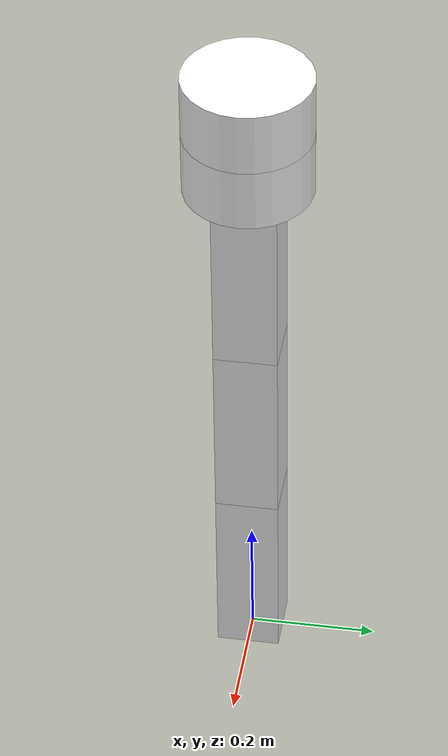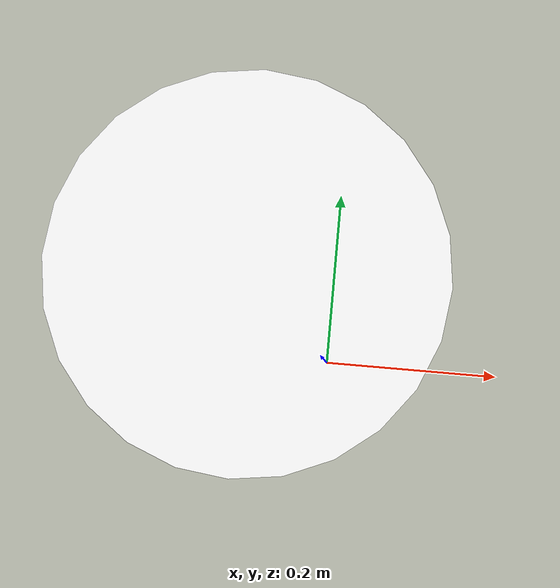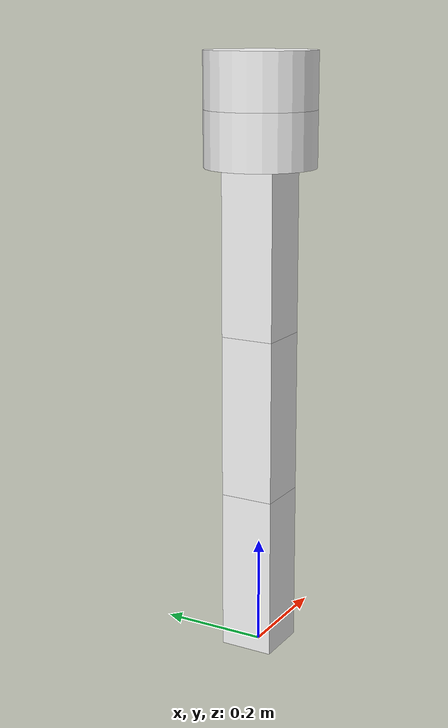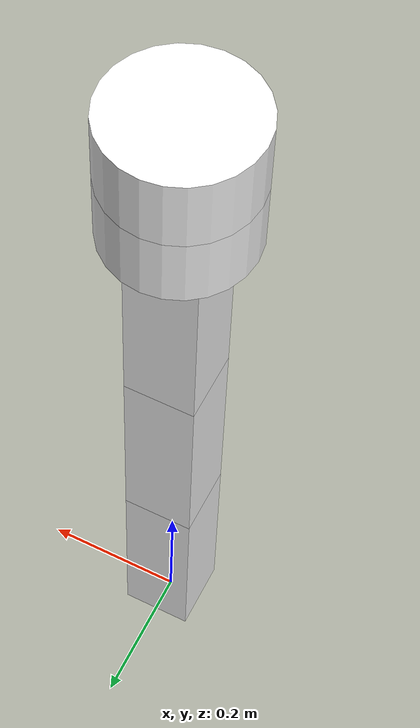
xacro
<?xml version="1.0"?>
<robot xmlns:xacro="http://www.ros.org/wiki/xacro" name="waveshare_servos">
    <!-- Arguments from the launch file. port and baudrate are ignored when use_mock_hardware
         is true (no serial port is opened). -->
    <xacro:arg name="port" default="/dev/ttyACM0" />
    <xacro:arg name="baudrate" default="1000000" />
    <xacro:arg name="use_mock_hardware" default="false" />

    <material name="white">
        <color rgba="1 1 1 1" />
    </material>

    <link name="base_link">
        <visual>
            <origin xyz="0 0 0.15"/>
            <geometry>
                <box size="0.1 0.1 0.3"/>
            </geometry>
            <material name="white"/>
        </visual>
    </link>

    <joint name="joint1" type="revolute">
        <axis xyz="0 0 1"/>
        <limit effort="1.0" lower="-1.570796" upper="1.570796" velocity="9.2"/>
        <origin xyz="0 0 0.3"/>
        <parent link="base_link"/>
        <child link="link2"/>
    </joint>

    <link name="link2">
        <visual>
            <origin xyz="0 0 0.15"/>
            <geometry>
                <box size="0.1 0.1 0.3"/>
            </geometry>
            <material name="white"/>
        </visual>
    </link>

    <joint name="joint2" type="revolute">
        <axis xyz="1 0 0"/>
        <limit effort="1.0" lower="-1.570796" upper="1.570796" velocity="9.2"/>
        <origin rpy="0 0 0" xyz="0 0 0.3"/>
        <parent link="link2"/>
        <child link="link3"/>
    </joint>

    <link name="link3">
        <visual>
            <origin xyz="0 0 0.15"/>
            <geometry>
                <box size="0.1 0.1 0.3"/>
            </geometry>
            <material name="white"/>
        </visual>
    </link>

    <joint name="joint3" type="continuous">
        <axis xyz="0 0 1"/>
        <limit effort="1.0" velocity="9.2"/>
        <origin xyz="0 0 0.3"/>
        <parent link="link3"/>
        <child link="link4"/>
    </joint>

    <link name="link4">
        <visual>
            <origin xyz="0 0 0.05"/>
            <geometry>
                <cylinder length="0.1" radius="0.1"/>
            </geometry>
            <material name="white"/>
        </visual>
    </link>

    <!-- The second wheel. Every joint of the ros2_control block has to exist here too, so joint4
         gets a link of its own. -->
    <joint name="joint4" type="continuous">
        <axis xyz="0 0 1"/>
        <limit effort="1.0" velocity="9.2"/>
        <origin xyz="0 0 0.1"/>
        <parent link="link4"/>
        <child link="link5"/>
    </joint>

    <link name="link5">
        <visual>
            <origin xyz="0 0 0.05"/>
            <geometry>
                <cylinder length="0.1" radius="0.1"/>
            </geometry>
            <material name="white"/>
        </visual>
    </link>

    <!-- A copy of this file must include its own copy of the ros2_control file: change the
         package name in this line. -->
    <xacro:include filename="$(find waveshare_servos)/description/ros2_control/example.ros2_control.xacro"/>

    <xacro:example_ws_ros2_control name="example_ws_ros2_control"
                                   port="$(arg port)"
                                   baudrate="$(arg baudrate)"
                                   use_mock_hardware="$(arg use_mock_hardware)"/>

</robot>
